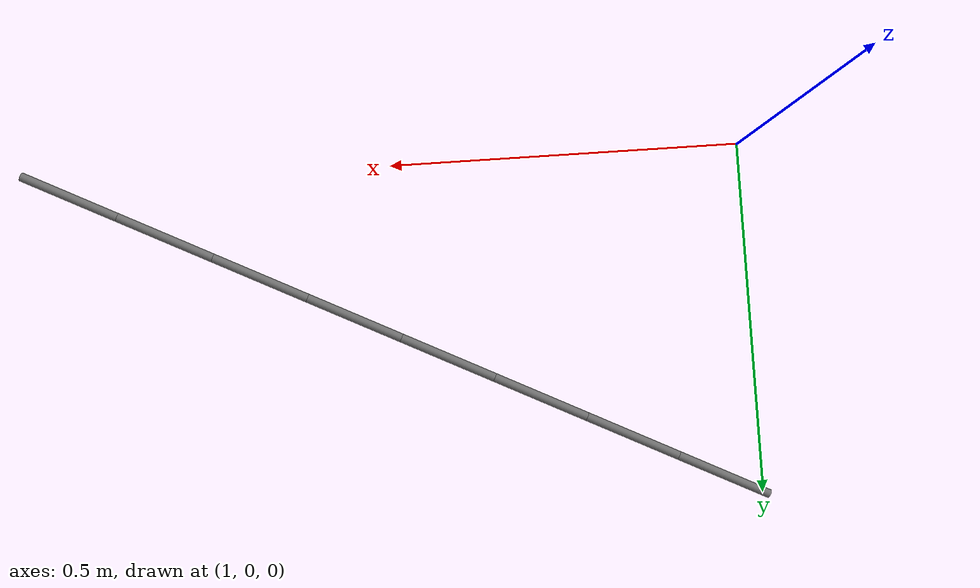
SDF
<?xml version="1.0"?>
<sdf version="1.7">
  <model name="cable_0">
    <self_collide>false</self_collide>

    <!-- Segment 0 -->
    <link name="seg_0">
      <pose>1.937500 0.031250 0.095625 0.000000 1.633325 2.677945</pose>
      <inertial>
        <mass>0.006</mass>
        <inertia>
          <ixx>0.000009858</ixx>
          <iyy>0.000009858</iyy>
          <izz>0.000000108</izz>
          <ixy>0</ixy><ixz>0</ixz><iyz>0</iyz>
        </inertia>
      </inertial>
      <collision name="col">
        <geometry>
          <cylinder><radius>0.006</radius><length>0.140028</length></cylinder>
        </geometry>
      </collision>
      <visual name="vis">
        <geometry>
          <cylinder><radius>0.006</radius><length>0.140028</length></cylinder>
        </geometry>
        <material>
          <ambient>0.20 0.20 0.20 1</ambient>
          <diffuse>0.45 0.45 0.45 1</diffuse>
          <specular>0.05 0.05 0.05 1</specular>
        </material>
      </visual>
    </link>

    <!-- Segment 1 -->
    <link name="seg_1">
      <pose>1.812500 0.093750 0.086875 0.000000 1.633325 2.677945</pose>
      <inertial>
        <mass>0.006</mass>
        <inertia>
          <ixx>0.000009858</ixx>
          <iyy>0.000009858</iyy>
          <izz>0.000000108</izz>
          <ixy>0</ixy><ixz>0</ixz><iyz>0</iyz>
        </inertia>
      </inertial>
      <collision name="col">
        <geometry>
          <cylinder><radius>0.006</radius><length>0.140028</length></cylinder>
        </geometry>
      </collision>
      <visual name="vis">
        <geometry>
          <cylinder><radius>0.006</radius><length>0.140028</length></cylinder>
        </geometry>
        <material>
          <ambient>0.20 0.20 0.20 1</ambient>
          <diffuse>0.45 0.45 0.45 1</diffuse>
          <specular>0.05 0.05 0.05 1</specular>
        </material>
      </visual>
    </link>

    <!-- Segment 2 -->
    <link name="seg_2">
      <pose>1.687500 0.156250 0.078125 0.000000 1.633325 2.677945</pose>
      <inertial>
        <mass>0.006</mass>
        <inertia>
          <ixx>0.000009858</ixx>
          <iyy>0.000009858</iyy>
          <izz>0.000000108</izz>
          <ixy>0</ixy><ixz>0</ixz><iyz>0</iyz>
        </inertia>
      </inertial>
      <collision name="col">
        <geometry>
          <cylinder><radius>0.006</radius><length>0.140028</length></cylinder>
        </geometry>
      </collision>
      <visual name="vis">
        <geometry>
          <cylinder><radius>0.006</radius><length>0.140028</length></cylinder>
        </geometry>
        <material>
          <ambient>0.20 0.20 0.20 1</ambient>
          <diffuse>0.45 0.45 0.45 1</diffuse>
          <specular>0.05 0.05 0.05 1</specular>
        </material>
      </visual>
    </link>

    <!-- Segment 3 -->
    <link name="seg_3">
      <pose>1.562500 0.218750 0.069375 0.000000 1.633325 2.677945</pose>
      <inertial>
        <mass>0.006</mass>
        <inertia>
          <ixx>0.000009858</ixx>
          <iyy>0.000009858</iyy>
          <izz>0.000000108</izz>
          <ixy>0</ixy><ixz>0</ixz><iyz>0</iyz>
        </inertia>
      </inertial>
      <collision name="col">
        <geometry>
          <cylinder><radius>0.006</radius><length>0.140028</length></cylinder>
        </geometry>
      </collision>
      <visual name="vis">
        <geometry>
          <cylinder><radius>0.006</radius><length>0.140028</length></cylinder>
        </geometry>
        <material>
          <ambient>0.20 0.20 0.20 1</ambient>
          <diffuse>0.45 0.45 0.45 1</diffuse>
          <specular>0.05 0.05 0.05 1</specular>
        </material>
      </visual>
    </link>

    <!-- Segment 4 -->
    <link name="seg_4">
      <pose>1.437500 0.281250 0.060625 0.000000 1.633325 2.677945</pose>
      <inertial>
        <mass>0.006</mass>
        <inertia>
          <ixx>0.000009858</ixx>
          <iyy>0.000009858</iyy>
          <izz>0.000000108</izz>
          <ixy>0</ixy><ixz>0</ixz><iyz>0</iyz>
        </inertia>
      </inertial>
      <collision name="col">
        <geometry>
          <cylinder><radius>0.006</radius><length>0.140028</length></cylinder>
        </geometry>
      </collision>
      <visual name="vis">
        <geometry>
          <cylinder><radius>0.006</radius><length>0.140028</length></cylinder>
        </geometry>
        <material>
          <ambient>0.20 0.20 0.20 1</ambient>
          <diffuse>0.45 0.45 0.45 1</diffuse>
          <specular>0.05 0.05 0.05 1</specular>
        </material>
      </visual>
    </link>

    <!-- Segment 5 -->
    <link name="seg_5">
      <pose>1.312500 0.343750 0.051875 0.000000 1.633325 2.677945</pose>
      <inertial>
        <mass>0.006</mass>
        <inertia>
          <ixx>0.000009858</ixx>
          <iyy>0.000009858</iyy>
          <izz>0.000000108</izz>
          <ixy>0</ixy><ixz>0</ixz><iyz>0</iyz>
        </inertia>
      </inertial>
      <collision name="col">
        <geometry>
          <cylinder><radius>0.006</radius><length>0.140028</length></cylinder>
        </geometry>
      </collision>
      <visual name="vis">
        <geometry>
          <cylinder><radius>0.006</radius><length>0.140028</length></cylinder>
        </geometry>
        <material>
          <ambient>0.20 0.20 0.20 1</ambient>
          <diffuse>0.45 0.45 0.45 1</diffuse>
          <specular>0.05 0.05 0.05 1</specular>
        </material>
      </visual>
    </link>

    <!-- Segment 6 -->
    <link name="seg_6">
      <pose>1.187500 0.406250 0.043125 0.000000 1.633325 2.677945</pose>
      <inertial>
        <mass>0.006</mass>
        <inertia>
          <ixx>0.000009858</ixx>
          <iyy>0.000009858</iyy>
          <izz>0.000000108</izz>
          <ixy>0</ixy><ixz>0</ixz><iyz>0</iyz>
        </inertia>
      </inertial>
      <collision name="col">
        <geometry>
          <cylinder><radius>0.006</radius><length>0.140028</length></cylinder>
        </geometry>
      </collision>
      <visual name="vis">
        <geometry>
          <cylinder><radius>0.006</radius><length>0.140028</length></cylinder>
        </geometry>
        <material>
          <ambient>0.20 0.20 0.20 1</ambient>
          <diffuse>0.45 0.45 0.45 1</diffuse>
          <specular>0.05 0.05 0.05 1</specular>
        </material>
      </visual>
    </link>

    <!-- Segment 7 -->
    <link name="seg_7">
      <pose>1.062500 0.468750 0.034375 0.000000 1.633325 2.677945</pose>
      <inertial>
        <mass>0.006</mass>
        <inertia>
          <ixx>0.000009858</ixx>
          <iyy>0.000009858</iyy>
          <izz>0.000000108</izz>
          <ixy>0</ixy><ixz>0</ixz><iyz>0</iyz>
        </inertia>
      </inertial>
      <collision name="col">
        <geometry>
          <cylinder><radius>0.006</radius><length>0.140028</length></cylinder>
        </geometry>
      </collision>
      <visual name="vis">
        <geometry>
          <cylinder><radius>0.006</radius><length>0.140028</length></cylinder>
        </geometry>
        <material>
          <ambient>0.20 0.20 0.20 1</ambient>
          <diffuse>0.45 0.45 0.45 1</diffuse>
          <specular>0.05 0.05 0.05 1</specular>
        </material>
      </visual>
    </link>

    <joint name="j_0_1" type="ball">
      <!-- joint at (1.8750, 0.0625, 0.0912) in world frame -->
      <pose relative_to="__model__">1.875000 0.062500 0.091250 0 0 0</pose>
      <parent>seg_0</parent>
      <child>seg_1</child>
      <axis>
        <xyz>1 0 0</xyz>
        <dynamics>
          <damping>0.5</damping>
          <friction>0.1</friction>
        </dynamics>
      </axis>
      <axis2>
        <xyz>0 1 0</xyz>
        <dynamics>
          <damping>0.5</damping>
          <friction>0.1</friction>
        </dynamics>
      </axis2>
    </joint>

    <joint name="j_1_2" type="ball">
      <!-- joint at (1.7500, 0.1250, 0.0825) in world frame -->
      <pose relative_to="__model__">1.750000 0.125000 0.082500 0 0 0</pose>
      <parent>seg_1</parent>
      <child>seg_2</child>
      <axis>
        <xyz>1 0 0</xyz>
        <dynamics>
          <damping>0.5</damping>
          <friction>0.1</friction>
        </dynamics>
      </axis>
      <axis2>
        <xyz>0 1 0</xyz>
        <dynamics>
          <damping>0.5</damping>
          <friction>0.1</friction>
        </dynamics>
      </axis2>
    </joint>

    <joint name="j_2_3" type="ball">
      <!-- joint at (1.6250, 0.1875, 0.0738) in world frame -->
      <pose relative_to="__model__">1.625000 0.187500 0.073750 0 0 0</pose>
      <parent>seg_2</parent>
      <child>seg_3</child>
      <axis>
        <xyz>1 0 0</xyz>
        <dynamics>
          <damping>0.5</damping>
          <friction>0.1</friction>
        </dynamics>
      </axis>
      <axis2>
        <xyz>0 1 0</xyz>
        <dynamics>
          <damping>0.5</damping>
          <friction>0.1</friction>
        </dynamics>
      </axis2>
    </joint>

    <joint name="j_3_4" type="ball">
      <!-- joint at (1.5000, 0.2500, 0.0650) in world frame -->
      <pose relative_to="__model__">1.500000 0.250000 0.065000 0 0 0</pose>
      <parent>seg_3</parent>
      <child>seg_4</child>
      <axis>
        <xyz>1 0 0</xyz>
        <dynamics>
          <damping>0.5</damping>
          <friction>0.1</friction>
        </dynamics>
      </axis>
      <axis2>
        <xyz>0 1 0</xyz>
        <dynamics>
          <damping>0.5</damping>
          <friction>0.1</friction>
        </dynamics>
      </axis2>
    </joint>

    <joint name="j_4_5" type="ball">
      <!-- joint at (1.3750, 0.3125, 0.0563) in world frame -->
      <pose relative_to="__model__">1.375000 0.312500 0.056250 0 0 0</pose>
      <parent>seg_4</parent>
      <child>seg_5</child>
      <axis>
        <xyz>1 0 0</xyz>
        <dynamics>
          <damping>0.5</damping>
          <friction>0.1</friction>
        </dynamics>
      </axis>
      <axis2>
        <xyz>0 1 0</xyz>
        <dynamics>
          <damping>0.5</damping>
          <friction>0.1</friction>
        </dynamics>
      </axis2>
    </joint>

    <joint name="j_5_6" type="ball">
      <!-- joint at (1.2500, 0.3750, 0.0475) in world frame -->
      <pose relative_to="__model__">1.250000 0.375000 0.047500 0 0 0</pose>
      <parent>seg_5</parent>
      <child>seg_6</child>
      <axis>
        <xyz>1 0 0</xyz>
        <dynamics>
          <damping>0.5</damping>
          <friction>0.1</friction>
        </dynamics>
      </axis>
      <axis2>
        <xyz>0 1 0</xyz>
        <dynamics>
          <damping>0.5</damping>
          <friction>0.1</friction>
        </dynamics>
      </axis2>
    </joint>

    <joint name="j_6_7" type="ball">
      <!-- joint at (1.1250, 0.4375, 0.0387) in world frame -->
      <pose relative_to="__model__">1.125000 0.437500 0.038750 0 0 0</pose>
      <parent>seg_6</parent>
      <child>seg_7</child>
      <axis>
        <xyz>1 0 0</xyz>
        <dynamics>
          <damping>0.5</damping>
          <friction>0.1</friction>
        </dynamics>
      </axis>
      <axis2>
        <xyz>0 1 0</xyz>
        <dynamics>
          <damping>0.5</damping>
          <friction>0.1</friction>
        </dynamics>
      </axis2>
    </joint>

  </model>
</sdf>
